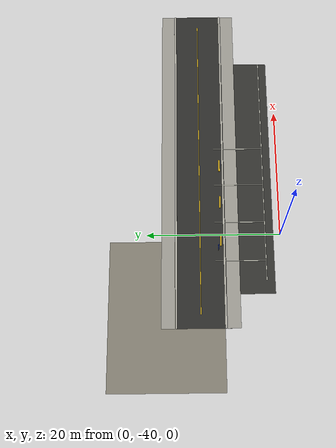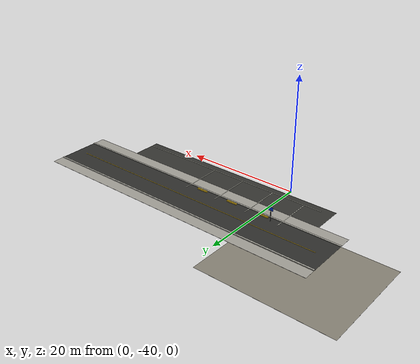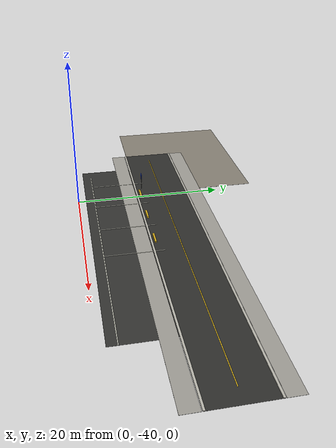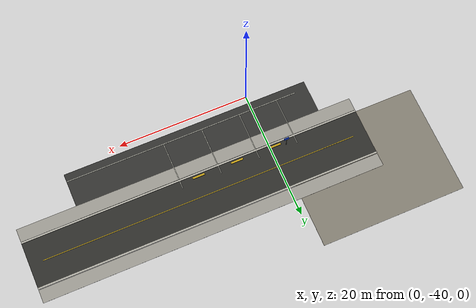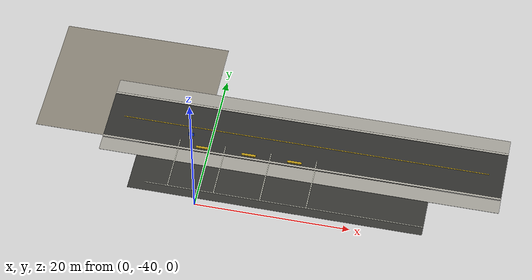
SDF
<sdf version="1.8">
 <world name="test_city">
  <model name="southwest_cafe_patio">
   <static>1</static>
   <pose>-12.000 -23.000 0.006 0 0 0.000000</pose>
   <link name="link">
    <visual name="visual">
     <cast_shadows>0</cast_shadows>
     <geometry><box><size>22.000 17.000 0.012</size></box></geometry>
     <material>
      <ambient>0.52 0.50 0.45 1</ambient>
      <diffuse>0.52 0.50 0.45 1</diffuse>
      <specular>0.08 0.08 0.08 1</specular>
      <pbr>
       <metal>
        <albedo_map>model://urban_surface/materials/textures/flagstone_patio.png</albedo_map>
        <roughness>0.86</roughness>
        <metalness>0.0</metalness>
       </metal>
      </pbr>
     </material>
    </visual>
   </link>
  </model>
  <model name="south_parking_lot">
   <static>1</static>
   <pose>10.000 -34.000 0.005 0 0 0.000000</pose>
   <link name="link">
    <visual name="visual">
     <cast_shadows>0</cast_shadows>
     <geometry><box><size>38.000 10.000 0.012</size></box></geometry>
     <material>
      <ambient>0.20 0.20 0.19 1</ambient>
      <diffuse>0.20 0.20 0.19 1</diffuse>
      <specular>0.08 0.08 0.08 1</specular>
      <pbr>
       <metal>
        <albedo_map>model://urban_surface/materials/textures/parking_asphalt.png</albedo_map>
        <roughness>0.9</roughness>
        <metalness>0.0</metalness>
       </metal>
      </pbr>
     </material>
    </visual>
   </link>
  </model>
  <model name="south_service_road">
   <static>1</static>
   <pose>12.000 -28.000 0.013 0 0 0.000000</pose>
   <link name="link">
    <visual name="visual">
     <cast_shadows>0</cast_shadows>
     <geometry><box><size>52.000 7.200 0.014</size></box></geometry>
     <material>
      <ambient>0.18 0.18 0.17 1</ambient>
      <diffuse>0.18 0.18 0.17 1</diffuse>
      <specular>0.08 0.08 0.08 1</specular>
      <pbr>
       <metal>
        <albedo_map>model://urban_surface/materials/textures/urban_asphalt.png</albedo_map>
        <roughness>0.92</roughness>
        <metalness>0.0</metalness>
       </metal>
      </pbr>
     </material>
    </visual>
   </link>
  </model>
  <model name="sidewalk_n_service">
   <static>1</static>
   <pose>12.000 -23.200 0.018 0 0 0.000000</pose>
   <link name="link">
    <visual name="visual">
     <cast_shadows>0</cast_shadows>
     <geometry><box><size>52.000 2.000 0.018</size></box></geometry>
     <material>
      <ambient>0.62 0.61 0.58 1</ambient>
      <diffuse>0.62 0.61 0.58 1</diffuse>
      <specular>0.08 0.08 0.08 1</specular>
      <pbr>
       <metal>
        <albedo_map>model://urban_surface/materials/textures/concrete_sidewalk.png</albedo_map>
        <roughness>0.82</roughness>
        <metalness>0.0</metalness>
       </metal>
      </pbr>
     </material>
    </visual>
   </link>
  </model>
  <model name="sidewalk_s_service">
   <static>1</static>
   <pose>12.000 -32.800 0.018 0 0 0.000000</pose>
   <link name="link">
    <visual name="visual">
     <cast_shadows>0</cast_shadows>
     <geometry><box><size>52.000 2.000 0.018</size></box></geometry>
     <material>
      <ambient>0.62 0.61 0.58 1</ambient>
      <diffuse>0.62 0.61 0.58 1</diffuse>
      <specular>0.08 0.08 0.08 1</specular>
      <pbr>
       <metal>
        <albedo_map>model://urban_surface/materials/textures/concrete_sidewalk.png</albedo_map>
        <roughness>0.82</roughness>
        <metalness>0.0</metalness>
       </metal>
      </pbr>
     </material>
    </visual>
   </link>
  </model>
  <model name="curb_service_n">
   <static>1</static>
   <pose>12.000 -24.400 0.060 0 0 0.000000</pose>
   <link name="link">
    <collision name="collision"><geometry><box><size>52.000 0.250 0.120</size></box></geometry></collision>
    <visual name="visual">
     <cast_shadows>0</cast_shadows>
     <geometry><box><size>52.000 0.250 0.120</size></box></geometry>
     <material>
      <ambient>0.72 0.71 0.67 1</ambient>
      <diffuse>0.72 0.71 0.67 1</diffuse>
      <specular>0.08 0.08 0.08 1</specular>
      <pbr>
       <metal>
        <albedo_map>model://urban_surface/materials/textures/curb_concrete.png</albedo_map>
        <roughness>0.8</roughness>
        <metalness>0.0</metalness>
       </metal>
      </pbr>
     </material>
    </visual>
   </link>
  </model>
  <model name="curb_service_s">
   <static>1</static>
   <pose>12.000 -31.600 0.060 0 0 0.000000</pose>
   <link name="link">
    <collision name="collision"><geometry><box><size>52.000 0.250 0.120</size></box></geometry></collision>
    <visual name="visual">
     <cast_shadows>0</cast_shadows>
     <geometry><box><size>52.000 0.250 0.120</size></box></geometry>
     <material>
      <ambient>0.72 0.71 0.67 1</ambient>
      <diffuse>0.72 0.71 0.67 1</diffuse>
      <specular>0.08 0.08 0.08 1</specular>
      <pbr>
       <metal>
        <albedo_map>model://urban_surface/materials/textures/curb_concrete.png</albedo_map>
        <roughness>0.8</roughness>
        <metalness>0.0</metalness>
       </metal>
      </pbr>
     </material>
    </visual>
   </link>
  </model>
  <model name="service_center_yellow_line">
   <static>1</static>
   <pose>12.000 -28.000 0.035 0 0 0.000000</pose>
   <link name="link">
    <visual name="visual">
     <cast_shadows>0</cast_shadows>
     <geometry><box><size>48.000 0.100 0.010</size></box></geometry>
     <material>
      <ambient>0.95 0.78 0.12 1</ambient>
      <diffuse>0.95 0.78 0.12 1</diffuse>
      <specular>0.05 0.05 0.05 1</specular>
      <pbr><metal><roughness>0.8</roughness><metalness>0</metalness></metal></pbr>
     </material>
    </visual>
   </link>
  </model>
  <model name="parking_bay_line_0">
   <static>1</static>
   <pose>-4.000 -34.000 0.042 0 0 0.000000</pose>
   <link name="link">
    <visual name="visual">
     <cast_shadows>0</cast_shadows>
     <geometry><box><size>0.100 7.500 0.010</size></box></geometry>
     <material>
      <ambient>0.88 0.88 0.82 1</ambient>
      <diffuse>0.88 0.88 0.82 1</diffuse>
      <specular>0.05 0.05 0.05 1</specular>
      <pbr><metal><roughness>0.8</roughness><metalness>0</metalness></metal></pbr>
     </material>
    </visual>
   </link>
  </model>
  <model name="parking_bay_line_1">
   <static>1</static>
   <pose>2.000 -34.000 0.042 0 0 0.000000</pose>
   <link name="link">
    <visual name="visual">
     <cast_shadows>0</cast_shadows>
     <geometry><box><size>0.100 7.500 0.010</size></box></geometry>
     <material>
      <ambient>0.88 0.88 0.82 1</ambient>
      <diffuse>0.88 0.88 0.82 1</diffuse>
      <specular>0.05 0.05 0.05 1</specular>
      <pbr><metal><roughness>0.8</roughness><metalness>0</metalness></metal></pbr>
     </material>
    </visual>
   </link>
  </model>
  <model name="parking_bay_line_2">
   <static>1</static>
   <pose>8.000 -34.000 0.042 0 0 0.000000</pose>
   <link name="link">
    <visual name="visual">
     <cast_shadows>0</cast_shadows>
     <geometry><box><size>0.100 7.500 0.010</size></box></geometry>
     <material>
      <ambient>0.88 0.88 0.82 1</ambient>
      <diffuse>0.88 0.88 0.82 1</diffuse>
      <specular>0.05 0.05 0.05 1</specular>
      <pbr><metal><roughness>0.8</roughness><metalness>0</metalness></metal></pbr>
     </material>
    </visual>
   </link>
  </model>
  <model name="parking_bay_line_3">
   <static>1</static>
   <pose>14.000 -34.000 0.042 0 0 0.000000</pose>
   <link name="link">
    <visual name="visual">
     <cast_shadows>0</cast_shadows>
     <geometry><box><size>0.100 7.500 0.010</size></box></geometry>
     <material>
      <ambient>0.88 0.88 0.82 1</ambient>
      <diffuse>0.88 0.88 0.82 1</diffuse>
      <specular>0.05 0.05 0.05 1</specular>
      <pbr><metal><roughness>0.8</roughness><metalness>0</metalness></metal></pbr>
     </material>
    </visual>
   </link>
  </model>
  <model name="parking_back_line">
   <static>1</static>
   <pose>11.000 -37.800 0.042 0 0 0.000000</pose>
   <link name="link">
    <visual name="visual">
     <cast_shadows>0</cast_shadows>
     <geometry><box><size>36.000 0.100 0.010</size></box></geometry>
     <material>
      <ambient>0.88 0.88 0.82 1</ambient>
      <diffuse>0.88 0.88 0.82 1</diffuse>
      <specular>0.05 0.05 0.05 1</specular>
      <pbr><metal><roughness>0.8</roughness><metalness>0</metalness></metal></pbr>
     </material>
    </visual>
   </link>
  </model>
  <model name="parking_block_0">
   <static>1</static>
   <pose>-0.800 -31.100 0.110 0 0 0.000000</pose>
   <link name="link">
    <collision name="collision"><geometry><box><size>1.850 0.240 0.220</size></box></geometry></collision>
    <visual name="visual">
     <cast_shadows>0</cast_shadows>
     <geometry><box><size>1.850 0.240 0.220</size></box></geometry>
     <material>
      <ambient>0.84 0.68 0.10 1</ambient>
      <diffuse>0.84 0.68 0.10 1</diffuse>
      <specular>0.05 0.05 0.05 1</specular>
      <pbr><metal><roughness>0.8</roughness><metalness>0</metalness></metal></pbr>
     </material>
    </visual>
   </link>
  </model>
  <model name="parking_block_1">
   <static>1</static>
   <pose>5.200 -31.100 0.110 0 0 0.000000</pose>
   <link name="link">
    <collision name="collision"><geometry><box><size>1.850 0.240 0.220</size></box></geometry></collision>
    <visual name="visual">
     <cast_shadows>0</cast_shadows>
     <geometry><box><size>1.850 0.240 0.220</size></box></geometry>
     <material>
      <ambient>0.84 0.68 0.10 1</ambient>
      <diffuse>0.84 0.68 0.10 1</diffuse>
      <specular>0.05 0.05 0.05 1</specular>
      <pbr><metal><roughness>0.8</roughness><metalness>0</metalness></metal></pbr>
     </material>
    </visual>
   </link>
  </model>
  <model name="parking_block_2">
   <static>1</static>
   <pose>11.200 -31.100 0.110 0 0 0.000000</pose>
   <link name="link">
    <collision name="collision"><geometry><box><size>1.850 0.240 0.220</size></box></geometry></collision>
    <visual name="visual">
     <cast_shadows>0</cast_shadows>
     <geometry><box><size>1.850 0.240 0.220</size></box></geometry>
     <material>
      <ambient>0.84 0.68 0.10 1</ambient>
      <diffuse>0.84 0.68 0.10 1</diffuse>
      <specular>0.05 0.05 0.05 1</specular>
      <pbr><metal><roughness>0.8</roughness><metalness>0</metalness></metal></pbr>
     </material>
    </visual>
   </link>
  </model>
  <model name="parking_sign_post">
   <static>1</static>
   <pose>-2.400 -30.700 1.000 0 0 0.000000</pose>
   <link name="link">
    <collision name="collision"><geometry><box><size>0.080 0.080 2.000</size></box></geometry></collision>
    <visual name="visual">
     <cast_shadows>0</cast_shadows>
     <geometry><box><size>0.080 0.080 2.000</size></box></geometry>
     <material>
      <ambient>0.32 0.32 0.30 1</ambient>
      <diffuse>0.32 0.32 0.30 1</diffuse>
      <specular>0.05 0.05 0.05 1</specular>
      <pbr><metal><roughness>0.8</roughness><metalness>0</metalness></metal></pbr>
     </material>
    </visual>
   </link>
  </model>
  <model name="parking_sign_plate">
   <static>1</static>
   <pose>-2.400 -30.700 2.100 0 0 0.000000</pose>
   <link name="link">
    <visual name="visual">
     <cast_shadows>0</cast_shadows>
     <geometry><box><size>0.750 0.080 0.550</size></box></geometry>
     <material>
      <ambient>0.05 0.23 0.85 1</ambient>
      <diffuse>0.05 0.23 0.85 1</diffuse>
      <specular>0.05 0.05 0.05 1</specular>
      <pbr><metal><roughness>0.8</roughness><metalness>0</metalness></metal></pbr>
     </material>
    </visual>
   </link>
  </model>
 </world>
</sdf>
